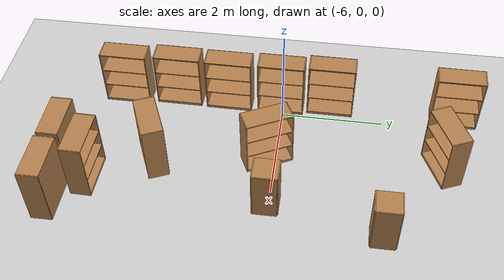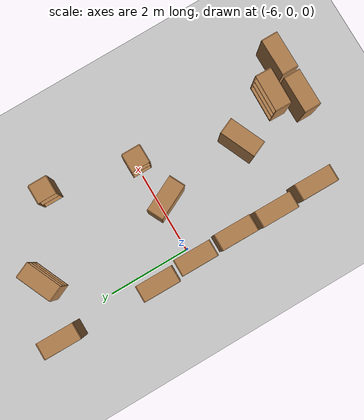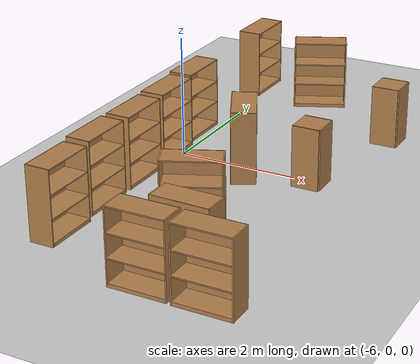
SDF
<sdf version="1.7">
 <world name="default">
  <model name="ground_plane">
   <static>1</static>
   <link name="link">
    <collision name="collision">
     <geometry><plane><normal>0 0 1</normal><size>100 100</size></plane></geometry>
     <surface><friction><ode><mu>100</mu><mu2>50</mu2></ode></friction></surface>
    </collision>
    <visual name="visual">
     <cast_shadows>0</cast_shadows>
     <geometry><plane><normal>0 0 1</normal><size>100 100</size></plane></geometry>
     <material>
      <script><uri>file://media/materials/scripts/gazebo.material</uri><name>Gazebo/Grey</name></script>
     </material>
    </visual>
   </link>
  </model>
  <model name="bookshelf_8">
   <static>1</static>
   <link name="link">
    <inertial><mass>1</mass></inertial>
    <collision name="back">
     <pose>0 0.005 0.6 0 -0 0</pose>
     <geometry><box><size>0.9 0.01 1.2</size></box></geometry>
    </collision>
    <visual name="visual1">
     <pose>0 0.005 0.6 0 -0 0</pose>
     <geometry><box><size>0.9 0.01 1.2</size></box></geometry>
     <material>
      <script><uri>file://media/materials/scripts/gazebo.material</uri><name>Gazebo/Wood</name></script>
     </material>
    </visual>
    <collision name="left_side">
     <pose>0.45 -0.195 0.6 0 -0 0</pose>
     <geometry><box><size>0.02 0.4 1.2</size></box></geometry>
    </collision>
    <visual name="visual2">
     <pose>0.45 -0.195 0.6 0 -0 0</pose>
     <geometry><box><size>0.02 0.4 1.2</size></box></geometry>
     <material>
      <script><uri>file://media/materials/scripts/gazebo.material</uri><name>Gazebo/Wood</name></script>
     </material>
    </visual>
    <collision name="right_side">
     <pose>-0.45 -0.195 0.6 0 -0 0</pose>
     <geometry><box><size>0.02 0.4 1.2</size></box></geometry>
    </collision>
    <visual name="visual3">
     <pose>-0.45 -0.195 0.6 0 -0 0</pose>
     <geometry><box><size>0.02 0.4 1.2</size></box></geometry>
     <material>
      <script><uri>file://media/materials/scripts/gazebo.material</uri><name>Gazebo/Wood</name></script>
     </material>
    </visual>
    <collision name="bottom">
     <pose>0 -0.195 0.03 0 -0 0</pose>
     <geometry><box><size>0.88 0.4 0.06</size></box></geometry>
    </collision>
    <visual name="visual4">
     <pose>0 -0.195 0.03 0 -0 0</pose>
     <geometry><box><size>0.88 0.4 0.06</size></box></geometry>
     <material>
      <script><uri>file://media/materials/scripts/gazebo.material</uri><name>Gazebo/Wood</name></script>
     </material>
    </visual>
    <collision name="top">
     <pose>0 -0.195 1.19 0 -0 0</pose>
     <geometry><box><size>0.88 0.4 0.02</size></box></geometry>
    </collision>
    <visual name="visual5">
     <pose>0 -0.195 1.19 0 -0 0</pose>
     <geometry><box><size>0.88 0.4 0.02</size></box></geometry>
     <material>
      <script><uri>file://media/materials/scripts/gazebo.material</uri><name>Gazebo/Wood</name></script>
     </material>
    </visual>
    <collision name="low_shelf">
     <pose>0 -0.195 0.43 0 -0 0</pose>
     <geometry><box><size>0.88 0.4 0.02</size></box></geometry>
    </collision>
    <visual name="visual6">
     <pose>0 -0.195 0.43 0 -0 0</pose>
     <geometry><box><size>0.88 0.4 0.02</size></box></geometry>
     <material>
      <script><uri>file://media/materials/scripts/gazebo.material</uri><name>Gazebo/Wood</name></script>
     </material>
    </visual>
    <collision name="high_shelf">
     <pose>0 -0.195 0.8 0 -0 0</pose>
     <geometry><box><size>0.88 0.4 0.02</size></box></geometry>
    </collision>
    <visual name="visual7">
     <pose>0 -0.195 0.8 0 -0 0</pose>
     <geometry><box><size>0.88 0.4 0.02</size></box></geometry>
     <material>
      <script><uri>file://media/materials/scripts/gazebo.material</uri><name>Gazebo/Wood</name></script>
     </material>
    </visual>
   </link>
   <pose>-4.29916 -3.79165 0 0 -0 0</pose>
  </model>
  <model name="bookshelf_9">
   <static>1</static>
   <link name="link">
    <inertial><mass>1</mass></inertial>
    <collision name="back">
     <pose>0 0.005 0.6 0 -0 0</pose>
     <geometry><box><size>0.9 0.01 1.2</size></box></geometry>
    </collision>
    <visual name="visual1">
     <pose>0 0.005 0.6 0 -0 0</pose>
     <geometry><box><size>0.9 0.01 1.2</size></box></geometry>
     <material>
      <script><uri>file://media/materials/scripts/gazebo.material</uri><name>Gazebo/Wood</name></script>
     </material>
    </visual>
    <collision name="left_side">
     <pose>0.45 -0.195 0.6 0 -0 0</pose>
     <geometry><box><size>0.02 0.4 1.2</size></box></geometry>
    </collision>
    <visual name="visual2">
     <pose>0.45 -0.195 0.6 0 -0 0</pose>
     <geometry><box><size>0.02 0.4 1.2</size></box></geometry>
     <material>
      <script><uri>file://media/materials/scripts/gazebo.material</uri><name>Gazebo/Wood</name></script>
     </material>
    </visual>
    <collision name="right_side">
     <pose>-0.45 -0.195 0.6 0 -0 0</pose>
     <geometry><box><size>0.02 0.4 1.2</size></box></geometry>
    </collision>
    <visual name="visual3">
     <pose>-0.45 -0.195 0.6 0 -0 0</pose>
     <geometry><box><size>0.02 0.4 1.2</size></box></geometry>
     <material>
      <script><uri>file://media/materials/scripts/gazebo.material</uri><name>Gazebo/Wood</name></script>
     </material>
    </visual>
    <collision name="bottom">
     <pose>0 -0.195 0.03 0 -0 0</pose>
     <geometry><box><size>0.88 0.4 0.06</size></box></geometry>
    </collision>
    <visual name="visual4">
     <pose>0 -0.195 0.03 0 -0 0</pose>
     <geometry><box><size>0.88 0.4 0.06</size></box></geometry>
     <material>
      <script><uri>file://media/materials/scripts/gazebo.material</uri><name>Gazebo/Wood</name></script>
     </material>
    </visual>
    <collision name="top">
     <pose>0 -0.195 1.19 0 -0 0</pose>
     <geometry><box><size>0.88 0.4 0.02</size></box></geometry>
    </collision>
    <visual name="visual5">
     <pose>0 -0.195 1.19 0 -0 0</pose>
     <geometry><box><size>0.88 0.4 0.02</size></box></geometry>
     <material>
      <script><uri>file://media/materials/scripts/gazebo.material</uri><name>Gazebo/Wood</name></script>
     </material>
    </visual>
    <collision name="low_shelf">
     <pose>0 -0.195 0.43 0 -0 0</pose>
     <geometry><box><size>0.88 0.4 0.02</size></box></geometry>
    </collision>
    <visual name="visual6">
     <pose>0 -0.195 0.43 0 -0 0</pose>
     <geometry><box><size>0.88 0.4 0.02</size></box></geometry>
     <material>
      <script><uri>file://media/materials/scripts/gazebo.material</uri><name>Gazebo/Wood</name></script>
     </material>
    </visual>
    <collision name="high_shelf">
     <pose>0 -0.195 0.8 0 -0 0</pose>
     <geometry><box><size>0.88 0.4 0.02</size></box></geometry>
    </collision>
    <visual name="visual7">
     <pose>0 -0.195 0.8 0 -0 0</pose>
     <geometry><box><size>0.88 0.4 0.02</size></box></geometry>
     <material>
      <script><uri>file://media/materials/scripts/gazebo.material</uri><name>Gazebo/Wood</name></script>
     </material>
    </visual>
   </link>
   <pose>-3.32142 -3.80273 0 0 -0 0</pose>
  </model>
  <model name="bookshelf_1_clone_clone_0">
   <static>1</static>
   <link name="link">
    <inertial><mass>1</mass></inertial>
    <collision name="back">
     <pose>0 0.005 0.6 0 -0 0</pose>
     <geometry><box><size>0.9 0.01 1.2</size></box></geometry>
    </collision>
    <visual name="visual1">
     <pose>0 0.005 0.6 0 -0 0</pose>
     <geometry><box><size>0.9 0.01 1.2</size></box></geometry>
     <material>
      <script><uri>file://media/materials/scripts/gazebo.material</uri><name>Gazebo/Wood</name></script>
     </material>
    </visual>
    <collision name="left_side">
     <pose>0.45 -0.195 0.6 0 -0 0</pose>
     <geometry><box><size>0.02 0.4 1.2</size></box></geometry>
    </collision>
    <visual name="visual2">
     <pose>0.45 -0.195 0.6 0 -0 0</pose>
     <geometry><box><size>0.02 0.4 1.2</size></box></geometry>
     <material>
      <script><uri>file://media/materials/scripts/gazebo.material</uri><name>Gazebo/Wood</name></script>
     </material>
    </visual>
    <collision name="right_side">
     <pose>-0.45 -0.195 0.6 0 -0 0</pose>
     <geometry><box><size>0.02 0.4 1.2</size></box></geometry>
    </collision>
    <visual name="visual3">
     <pose>-0.45 -0.195 0.6 0 -0 0</pose>
     <geometry><box><size>0.02 0.4 1.2</size></box></geometry>
     <material>
      <script><uri>file://media/materials/scripts/gazebo.material</uri><name>Gazebo/Wood</name></script>
     </material>
    </visual>
    <collision name="bottom">
     <pose>0 -0.195 0.03 0 -0 0</pose>
     <geometry><box><size>0.88 0.4 0.06</size></box></geometry>
    </collision>
    <visual name="visual4">
     <pose>0 -0.195 0.03 0 -0 0</pose>
     <geometry><box><size>0.88 0.4 0.06</size></box></geometry>
     <material>
      <script><uri>file://media/materials/scripts/gazebo.material</uri><name>Gazebo/Wood</name></script>
     </material>
    </visual>
    <collision name="top">
     <pose>0 -0.195 1.19 0 -0 0</pose>
     <geometry><box><size>0.88 0.4 0.02</size></box></geometry>
    </collision>
    <visual name="visual5">
     <pose>0 -0.195 1.19 0 -0 0</pose>
     <geometry><box><size>0.88 0.4 0.02</size></box></geometry>
     <material>
      <script><uri>file://media/materials/scripts/gazebo.material</uri><name>Gazebo/Wood</name></script>
     </material>
    </visual>
    <collision name="low_shelf">
     <pose>0 -0.195 0.43 0 -0 0</pose>
     <geometry><box><size>0.88 0.4 0.02</size></box></geometry>
    </collision>
    <visual name="visual6">
     <pose>0 -0.195 0.43 0 -0 0</pose>
     <geometry><box><size>0.88 0.4 0.02</size></box></geometry>
     <material>
      <script><uri>file://media/materials/scripts/gazebo.material</uri><name>Gazebo/Wood</name></script>
     </material>
    </visual>
    <collision name="high_shelf">
     <pose>0 -0.195 0.8 0 -0 0</pose>
     <geometry><box><size>0.88 0.4 0.02</size></box></geometry>
    </collision>
    <visual name="visual7">
     <pose>0 -0.195 0.8 0 -0 0</pose>
     <geometry><box><size>0.88 0.4 0.02</size></box></geometry>
     <material>
      <script><uri>file://media/materials/scripts/gazebo.material</uri><name>Gazebo/Wood</name></script>
     </material>
    </visual>
   </link>
   <pose>-3.95037 -3.64569 0 0 -0 3.12003</pose>
  </model>
  <model name="bookshelf_1_clone_2">
   <static>1</static>
   <link name="link">
    <inertial><mass>1</mass></inertial>
    <collision name="back">
     <pose>0 0.005 0.6 0 -0 0</pose>
     <geometry><box><size>0.9 0.01 1.2</size></box></geometry>
    </collision>
    <visual name="visual1">
     <pose>0 0.005 0.6 0 -0 0</pose>
     <geometry><box><size>0.9 0.01 1.2</size></box></geometry>
     <material>
      <script><uri>file://media/materials/scripts/gazebo.material</uri><name>Gazebo/Wood</name></script>
     </material>
    </visual>
    <collision name="left_side">
     <pose>0.45 -0.195 0.6 0 -0 0</pose>
     <geometry><box><size>0.02 0.4 1.2</size></box></geometry>
    </collision>
    <visual name="visual2">
     <pose>0.45 -0.195 0.6 0 -0 0</pose>
     <geometry><box><size>0.02 0.4 1.2</size></box></geometry>
     <material>
      <script><uri>file://media/materials/scripts/gazebo.material</uri><name>Gazebo/Wood</name></script>
     </material>
    </visual>
    <collision name="right_side">
     <pose>-0.45 -0.195 0.6 0 -0 0</pose>
     <geometry><box><size>0.02 0.4 1.2</size></box></geometry>
    </collision>
    <visual name="visual3">
     <pose>-0.45 -0.195 0.6 0 -0 0</pose>
     <geometry><box><size>0.02 0.4 1.2</size></box></geometry>
     <material>
      <script><uri>file://media/materials/scripts/gazebo.material</uri><name>Gazebo/Wood</name></script>
     </material>
    </visual>
    <collision name="bottom">
     <pose>0 -0.195 0.03 0 -0 0</pose>
     <geometry><box><size>0.88 0.4 0.06</size></box></geometry>
    </collision>
    <visual name="visual4">
     <pose>0 -0.195 0.03 0 -0 0</pose>
     <geometry><box><size>0.88 0.4 0.06</size></box></geometry>
     <material>
      <script><uri>file://media/materials/scripts/gazebo.material</uri><name>Gazebo/Wood</name></script>
     </material>
    </visual>
    <collision name="top">
     <pose>0 -0.195 1.19 0 -0 0</pose>
     <geometry><box><size>0.88 0.4 0.02</size></box></geometry>
    </collision>
    <visual name="visual5">
     <pose>0 -0.195 1.19 0 -0 0</pose>
     <geometry><box><size>0.88 0.4 0.02</size></box></geometry>
     <material>
      <script><uri>file://media/materials/scripts/gazebo.material</uri><name>Gazebo/Wood</name></script>
     </material>
    </visual>
    <collision name="low_shelf">
     <pose>0 -0.195 0.43 0 -0 0</pose>
     <geometry><box><size>0.88 0.4 0.02</size></box></geometry>
    </collision>
    <visual name="visual6">
     <pose>0 -0.195 0.43 0 -0 0</pose>
     <geometry><box><size>0.88 0.4 0.02</size></box></geometry>
     <material>
      <script><uri>file://media/materials/scripts/gazebo.material</uri><name>Gazebo/Wood</name></script>
     </material>
    </visual>
    <collision name="high_shelf">
     <pose>0 -0.195 0.8 0 -0 0</pose>
     <geometry><box><size>0.88 0.4 0.02</size></box></geometry>
    </collision>
    <visual name="visual7">
     <pose>0 -0.195 0.8 0 -0 0</pose>
     <geometry><box><size>0.88 0.4 0.02</size></box></geometry>
     <material>
      <script><uri>file://media/materials/scripts/gazebo.material</uri><name>Gazebo/Wood</name></script>
     </material>
    </visual>
   </link>
   <pose>-6.39308 -3.17837 0 0 -0 1.56314</pose>
  </model>
  <model name="bookshelf_1_clone_3">
   <static>1</static>
   <link name="link">
    <inertial><mass>1</mass></inertial>
    <collision name="back">
     <pose>0 0.005 0.6 0 -0 0</pose>
     <geometry><box><size>0.9 0.01 1.2</size></box></geometry>
    </collision>
    <visual name="visual1">
     <pose>0 0.005 0.6 0 -0 0</pose>
     <geometry><box><size>0.9 0.01 1.2</size></box></geometry>
     <material>
      <script><uri>file://media/materials/scripts/gazebo.material</uri><name>Gazebo/Wood</name></script>
     </material>
    </visual>
    <collision name="left_side">
     <pose>0.45 -0.195 0.6 0 -0 0</pose>
     <geometry><box><size>0.02 0.4 1.2</size></box></geometry>
    </collision>
    <visual name="visual2">
     <pose>0.45 -0.195 0.6 0 -0 0</pose>
     <geometry><box><size>0.02 0.4 1.2</size></box></geometry>
     <material>
      <script><uri>file://media/materials/scripts/gazebo.material</uri><name>Gazebo/Wood</name></script>
     </material>
    </visual>
    <collision name="right_side">
     <pose>-0.45 -0.195 0.6 0 -0 0</pose>
     <geometry><box><size>0.02 0.4 1.2</size></box></geometry>
    </collision>
    <visual name="visual3">
     <pose>-0.45 -0.195 0.6 0 -0 0</pose>
     <geometry><box><size>0.02 0.4 1.2</size></box></geometry>
     <material>
      <script><uri>file://media/materials/scripts/gazebo.material</uri><name>Gazebo/Wood</name></script>
     </material>
    </visual>
    <collision name="bottom">
     <pose>0 -0.195 0.03 0 -0 0</pose>
     <geometry><box><size>0.88 0.4 0.06</size></box></geometry>
    </collision>
    <visual name="visual4">
     <pose>0 -0.195 0.03 0 -0 0</pose>
     <geometry><box><size>0.88 0.4 0.06</size></box></geometry>
     <material>
      <script><uri>file://media/materials/scripts/gazebo.material</uri><name>Gazebo/Wood</name></script>
     </material>
    </visual>
    <collision name="top">
     <pose>0 -0.195 1.19 0 -0 0</pose>
     <geometry><box><size>0.88 0.4 0.02</size></box></geometry>
    </collision>
    <visual name="visual5">
     <pose>0 -0.195 1.19 0 -0 0</pose>
     <geometry><box><size>0.88 0.4 0.02</size></box></geometry>
     <material>
      <script><uri>file://media/materials/scripts/gazebo.material</uri><name>Gazebo/Wood</name></script>
     </material>
    </visual>
    <collision name="low_shelf">
     <pose>0 -0.195 0.43 0 -0 0</pose>
     <geometry><box><size>0.88 0.4 0.02</size></box></geometry>
    </collision>
    <visual name="visual6">
     <pose>0 -0.195 0.43 0 -0 0</pose>
     <geometry><box><size>0.88 0.4 0.02</size></box></geometry>
     <material>
      <script><uri>file://media/materials/scripts/gazebo.material</uri><name>Gazebo/Wood</name></script>
     </material>
    </visual>
    <collision name="high_shelf">
     <pose>0 -0.195 0.8 0 -0 0</pose>
     <geometry><box><size>0.88 0.4 0.02</size></box></geometry>
    </collision>
    <visual name="visual7">
     <pose>0 -0.195 0.8 0 -0 0</pose>
     <geometry><box><size>0.88 0.4 0.02</size></box></geometry>
     <material>
      <script><uri>file://media/materials/scripts/gazebo.material</uri><name>Gazebo/Wood</name></script>
     </material>
    </visual>
   </link>
   <pose>-6.45397 -2.12033 0 0 -0 1.56314</pose>
  </model>
  <model name="bookshelf_1_clone_4">
   <static>1</static>
   <link name="link">
    <inertial><mass>1</mass></inertial>
    <collision name="back">
     <pose>0 0.005 0.6 0 -0 0</pose>
     <geometry><box><size>0.9 0.01 1.2</size></box></geometry>
    </collision>
    <visual name="visual1">
     <pose>0 0.005 0.6 0 -0 0</pose>
     <geometry><box><size>0.9 0.01 1.2</size></box></geometry>
     <material>
      <script><uri>file://media/materials/scripts/gazebo.material</uri><name>Gazebo/Wood</name></script>
     </material>
    </visual>
    <collision name="left_side">
     <pose>0.45 -0.195 0.6 0 -0 0</pose>
     <geometry><box><size>0.02 0.4 1.2</size></box></geometry>
    </collision>
    <visual name="visual2">
     <pose>0.45 -0.195 0.6 0 -0 0</pose>
     <geometry><box><size>0.02 0.4 1.2</size></box></geometry>
     <material>
      <script><uri>file://media/materials/scripts/gazebo.material</uri><name>Gazebo/Wood</name></script>
     </material>
    </visual>
    <collision name="right_side">
     <pose>-0.45 -0.195 0.6 0 -0 0</pose>
     <geometry><box><size>0.02 0.4 1.2</size></box></geometry>
    </collision>
    <visual name="visual3">
     <pose>-0.45 -0.195 0.6 0 -0 0</pose>
     <geometry><box><size>0.02 0.4 1.2</size></box></geometry>
     <material>
      <script><uri>file://media/materials/scripts/gazebo.material</uri><name>Gazebo/Wood</name></script>
     </material>
    </visual>
    <collision name="bottom">
     <pose>0 -0.195 0.03 0 -0 0</pose>
     <geometry><box><size>0.88 0.4 0.06</size></box></geometry>
    </collision>
    <visual name="visual4">
     <pose>0 -0.195 0.03 0 -0 0</pose>
     <geometry><box><size>0.88 0.4 0.06</size></box></geometry>
     <material>
      <script><uri>file://media/materials/scripts/gazebo.material</uri><name>Gazebo/Wood</name></script>
     </material>
    </visual>
    <collision name="top">
     <pose>0 -0.195 1.19 0 -0 0</pose>
     <geometry><box><size>0.88 0.4 0.02</size></box></geometry>
    </collision>
    <visual name="visual5">
     <pose>0 -0.195 1.19 0 -0 0</pose>
     <geometry><box><size>0.88 0.4 0.02</size></box></geometry>
     <material>
      <script><uri>file://media/materials/scripts/gazebo.material</uri><name>Gazebo/Wood</name></script>
     </material>
    </visual>
    <collision name="low_shelf">
     <pose>0 -0.195 0.43 0 -0 0</pose>
     <geometry><box><size>0.88 0.4 0.02</size></box></geometry>
    </collision>
    <visual name="visual6">
     <pose>0 -0.195 0.43 0 -0 0</pose>
     <geometry><box><size>0.88 0.4 0.02</size></box></geometry>
     <material>
      <script><uri>file://media/materials/scripts/gazebo.material</uri><name>Gazebo/Wood</name></script>
     </material>
    </visual>
    <collision name="high_shelf">
     <pose>0 -0.195 0.8 0 -0 0</pose>
     <geometry><box><size>0.88 0.4 0.02</size></box></geometry>
    </collision>
    <visual name="visual7">
     <pose>0 -0.195 0.8 0 -0 0</pose>
     <geometry><box><size>0.88 0.4 0.02</size></box></geometry>
     <material>
      <script><uri>file://media/materials/scripts/gazebo.material</uri><name>Gazebo/Wood</name></script>
     </material>
    </visual>
   </link>
   <pose>-6.43391 -1.09772 0 0 -0 1.56314</pose>
  </model>
  <model name="bookshelf_1_clone_5">
   <static>1</static>
   <link name="link">
    <inertial><mass>1</mass></inertial>
    <collision name="back">
     <pose>0 0.005 0.6 0 -0 0</pose>
     <geometry><box><size>0.9 0.01 1.2</size></box></geometry>
    </collision>
    <visual name="visual1">
     <pose>0 0.005 0.6 0 -0 0</pose>
     <geometry><box><size>0.9 0.01 1.2</size></box></geometry>
     <material>
      <script><uri>file://media/materials/scripts/gazebo.material</uri><name>Gazebo/Wood</name></script>
     </material>
    </visual>
    <collision name="left_side">
     <pose>0.45 -0.195 0.6 0 -0 0</pose>
     <geometry><box><size>0.02 0.4 1.2</size></box></geometry>
    </collision>
    <visual name="visual2">
     <pose>0.45 -0.195 0.6 0 -0 0</pose>
     <geometry><box><size>0.02 0.4 1.2</size></box></geometry>
     <material>
      <script><uri>file://media/materials/scripts/gazebo.material</uri><name>Gazebo/Wood</name></script>
     </material>
    </visual>
    <collision name="right_side">
     <pose>-0.45 -0.195 0.6 0 -0 0</pose>
     <geometry><box><size>0.02 0.4 1.2</size></box></geometry>
    </collision>
    <visual name="visual3">
     <pose>-0.45 -0.195 0.6 0 -0 0</pose>
     <geometry><box><size>0.02 0.4 1.2</size></box></geometry>
     <material>
      <script><uri>file://media/materials/scripts/gazebo.material</uri><name>Gazebo/Wood</name></script>
     </material>
    </visual>
    <collision name="bottom">
     <pose>0 -0.195 0.03 0 -0 0</pose>
     <geometry><box><size>0.88 0.4 0.06</size></box></geometry>
    </collision>
    <visual name="visual4">
     <pose>0 -0.195 0.03 0 -0 0</pose>
     <geometry><box><size>0.88 0.4 0.06</size></box></geometry>
     <material>
      <script><uri>file://media/materials/scripts/gazebo.material</uri><name>Gazebo/Wood</name></script>
     </material>
    </visual>
    <collision name="top">
     <pose>0 -0.195 1.19 0 -0 0</pose>
     <geometry><box><size>0.88 0.4 0.02</size></box></geometry>
    </collision>
    <visual name="visual5">
     <pose>0 -0.195 1.19 0 -0 0</pose>
     <geometry><box><size>0.88 0.4 0.02</size></box></geometry>
     <material>
      <script><uri>file://media/materials/scripts/gazebo.material</uri><name>Gazebo/Wood</name></script>
     </material>
    </visual>
    <collision name="low_shelf">
     <pose>0 -0.195 0.43 0 -0 0</pose>
     <geometry><box><size>0.88 0.4 0.02</size></box></geometry>
    </collision>
    <visual name="visual6">
     <pose>0 -0.195 0.43 0 -0 0</pose>
     <geometry><box><size>0.88 0.4 0.02</size></box></geometry>
     <material>
      <script><uri>file://media/materials/scripts/gazebo.material</uri><name>Gazebo/Wood</name></script>
     </material>
    </visual>
    <collision name="high_shelf">
     <pose>0 -0.195 0.8 0 -0 0</pose>
     <geometry><box><size>0.88 0.4 0.02</size></box></geometry>
    </collision>
    <visual name="visual7">
     <pose>0 -0.195 0.8 0 -0 0</pose>
     <geometry><box><size>0.88 0.4 0.02</size></box></geometry>
     <material>
      <script><uri>file://media/materials/scripts/gazebo.material</uri><name>Gazebo/Wood</name></script>
     </material>
    </visual>
   </link>
   <pose>-6.45868 -0.057602 0 0 -0 1.56314</pose>
  </model>
  <model name="bookshelf_1_clone_6">
   <static>1</static>
   <link name="link">
    <inertial><mass>1</mass></inertial>
    <collision name="back">
     <pose>0 0.005 0.6 0 -0 0</pose>
     <geometry><box><size>0.9 0.01 1.2</size></box></geometry>
    </collision>
    <visual name="visual1">
     <pose>0 0.005 0.6 0 -0 0</pose>
     <geometry><box><size>0.9 0.01 1.2</size></box></geometry>
     <material>
      <script><uri>file://media/materials/scripts/gazebo.material</uri><name>Gazebo/Wood</name></script>
     </material>
    </visual>
    <collision name="left_side">
     <pose>0.45 -0.195 0.6 0 -0 0</pose>
     <geometry><box><size>0.02 0.4 1.2</size></box></geometry>
    </collision>
    <visual name="visual2">
     <pose>0.45 -0.195 0.6 0 -0 0</pose>
     <geometry><box><size>0.02 0.4 1.2</size></box></geometry>
     <material>
      <script><uri>file://media/materials/scripts/gazebo.material</uri><name>Gazebo/Wood</name></script>
     </material>
    </visual>
    <collision name="right_side">
     <pose>-0.45 -0.195 0.6 0 -0 0</pose>
     <geometry><box><size>0.02 0.4 1.2</size></box></geometry>
    </collision>
    <visual name="visual3">
     <pose>-0.45 -0.195 0.6 0 -0 0</pose>
     <geometry><box><size>0.02 0.4 1.2</size></box></geometry>
     <material>
      <script><uri>file://media/materials/scripts/gazebo.material</uri><name>Gazebo/Wood</name></script>
     </material>
    </visual>
    <collision name="bottom">
     <pose>0 -0.195 0.03 0 -0 0</pose>
     <geometry><box><size>0.88 0.4 0.06</size></box></geometry>
    </collision>
    <visual name="visual4">
     <pose>0 -0.195 0.03 0 -0 0</pose>
     <geometry><box><size>0.88 0.4 0.06</size></box></geometry>
     <material>
      <script><uri>file://media/materials/scripts/gazebo.material</uri><name>Gazebo/Wood</name></script>
     </material>
    </visual>
    <collision name="top">
     <pose>0 -0.195 1.19 0 -0 0</pose>
     <geometry><box><size>0.88 0.4 0.02</size></box></geometry>
    </collision>
    <visual name="visual5">
     <pose>0 -0.195 1.19 0 -0 0</pose>
     <geometry><box><size>0.88 0.4 0.02</size></box></geometry>
     <material>
      <script><uri>file://media/materials/scripts/gazebo.material</uri><name>Gazebo/Wood</name></script>
     </material>
    </visual>
    <collision name="low_shelf">
     <pose>0 -0.195 0.43 0 -0 0</pose>
     <geometry><box><size>0.88 0.4 0.02</size></box></geometry>
    </collision>
    <visual name="visual6">
     <pose>0 -0.195 0.43 0 -0 0</pose>
     <geometry><box><size>0.88 0.4 0.02</size></box></geometry>
     <material>
      <script><uri>file://media/materials/scripts/gazebo.material</uri><name>Gazebo/Wood</name></script>
     </material>
    </visual>
    <collision name="high_shelf">
     <pose>0 -0.195 0.8 0 -0 0</pose>
     <geometry><box><size>0.88 0.4 0.02</size></box></geometry>
    </collision>
    <visual name="visual7">
     <pose>0 -0.195 0.8 0 -0 0</pose>
     <geometry><box><size>0.88 0.4 0.02</size></box></geometry>
     <material>
      <script><uri>file://media/materials/scripts/gazebo.material</uri><name>Gazebo/Wood</name></script>
     </material>
    </visual>
   </link>
   <pose>-6.51912 0.937295 0 0 -0 1.56314</pose>
  </model>
  <model name="bookshelf_1_clone_8">
   <static>1</static>
   <link name="link">
    <inertial><mass>1</mass></inertial>
    <collision name="back">
     <pose>0 0.005 0.6 0 -0 0</pose>
     <geometry><box><size>0.9 0.01 1.2</size></box></geometry>
    </collision>
    <visual name="visual1">
     <pose>0 0.005 0.6 0 -0 0</pose>
     <geometry><box><size>0.9 0.01 1.2</size></box></geometry>
     <material>
      <script><uri>file://media/materials/scripts/gazebo.material</uri><name>Gazebo/Wood</name></script>
     </material>
    </visual>
    <collision name="left_side">
     <pose>0.45 -0.195 0.6 0 -0 0</pose>
     <geometry><box><size>0.02 0.4 1.2</size></box></geometry>
    </collision>
    <visual name="visual2">
     <pose>0.45 -0.195 0.6 0 -0 0</pose>
     <geometry><box><size>0.02 0.4 1.2</size></box></geometry>
     <material>
      <script><uri>file://media/materials/scripts/gazebo.material</uri><name>Gazebo/Wood</name></script>
     </material>
    </visual>
    <collision name="right_side">
     <pose>-0.45 -0.195 0.6 0 -0 0</pose>
     <geometry><box><size>0.02 0.4 1.2</size></box></geometry>
    </collision>
    <visual name="visual3">
     <pose>-0.45 -0.195 0.6 0 -0 0</pose>
     <geometry><box><size>0.02 0.4 1.2</size></box></geometry>
     <material>
      <script><uri>file://media/materials/scripts/gazebo.material</uri><name>Gazebo/Wood</name></script>
     </material>
    </visual>
    <collision name="bottom">
     <pose>0 -0.195 0.03 0 -0 0</pose>
     <geometry><box><size>0.88 0.4 0.06</size></box></geometry>
    </collision>
    <visual name="visual4">
     <pose>0 -0.195 0.03 0 -0 0</pose>
     <geometry><box><size>0.88 0.4 0.06</size></box></geometry>
     <material>
      <script><uri>file://media/materials/scripts/gazebo.material</uri><name>Gazebo/Wood</name></script>
     </material>
    </visual>
    <collision name="top">
     <pose>0 -0.195 1.19 0 -0 0</pose>
     <geometry><box><size>0.88 0.4 0.02</size></box></geometry>
    </collision>
    <visual name="visual5">
     <pose>0 -0.195 1.19 0 -0 0</pose>
     <geometry><box><size>0.88 0.4 0.02</size></box></geometry>
     <material>
      <script><uri>file://media/materials/scripts/gazebo.material</uri><name>Gazebo/Wood</name></script>
     </material>
    </visual>
    <collision name="low_shelf">
     <pose>0 -0.195 0.43 0 -0 0</pose>
     <geometry><box><size>0.88 0.4 0.02</size></box></geometry>
    </collision>
    <visual name="visual6">
     <pose>0 -0.195 0.43 0 -0 0</pose>
     <geometry><box><size>0.88 0.4 0.02</size></box></geometry>
     <material>
      <script><uri>file://media/materials/scripts/gazebo.material</uri><name>Gazebo/Wood</name></script>
     </material>
    </visual>
    <collision name="high_shelf">
     <pose>0 -0.195 0.8 0 -0 0</pose>
     <geometry><box><size>0.88 0.4 0.02</size></box></geometry>
    </collision>
    <visual name="visual7">
     <pose>0 -0.195 0.8 0 -0 0</pose>
     <geometry><box><size>0.88 0.4 0.02</size></box></geometry>
     <material>
      <script><uri>file://media/materials/scripts/gazebo.material</uri><name>Gazebo/Wood</name></script>
     </material>
    </visual>
   </link>
   <pose>-6.48183 3.40297 0 0 -0 1.56314</pose>
  </model>
  <model name="bookshelf_1_clone_9">
   <static>1</static>
   <link name="link">
    <inertial><mass>1</mass></inertial>
    <collision name="back">
     <pose>0 0.005 0.6 0 -0 0</pose>
     <geometry><box><size>0.9 0.01 1.2</size></box></geometry>
    </collision>
    <visual name="visual1">
     <pose>0 0.005 0.6 0 -0 0</pose>
     <geometry><box><size>0.9 0.01 1.2</size></box></geometry>
     <material>
      <script><uri>file://media/materials/scripts/gazebo.material</uri><name>Gazebo/Wood</name></script>
     </material>
    </visual>
    <collision name="left_side">
     <pose>0.45 -0.195 0.6 0 -0 0</pose>
     <geometry><box><size>0.02 0.4 1.2</size></box></geometry>
    </collision>
    <visual name="visual2">
     <pose>0.45 -0.195 0.6 0 -0 0</pose>
     <geometry><box><size>0.02 0.4 1.2</size></box></geometry>
     <material>
      <script><uri>file://media/materials/scripts/gazebo.material</uri><name>Gazebo/Wood</name></script>
     </material>
    </visual>
    <collision name="right_side">
     <pose>-0.45 -0.195 0.6 0 -0 0</pose>
     <geometry><box><size>0.02 0.4 1.2</size></box></geometry>
    </collision>
    <visual name="visual3">
     <pose>-0.45 -0.195 0.6 0 -0 0</pose>
     <geometry><box><size>0.02 0.4 1.2</size></box></geometry>
     <material>
      <script><uri>file://media/materials/scripts/gazebo.material</uri><name>Gazebo/Wood</name></script>
     </material>
    </visual>
    <collision name="bottom">
     <pose>0 -0.195 0.03 0 -0 0</pose>
     <geometry><box><size>0.88 0.4 0.06</size></box></geometry>
    </collision>
    <visual name="visual4">
     <pose>0 -0.195 0.03 0 -0 0</pose>
     <geometry><box><size>0.88 0.4 0.06</size></box></geometry>
     <material>
      <script><uri>file://media/materials/scripts/gazebo.material</uri><name>Gazebo/Wood</name></script>
     </material>
    </visual>
    <collision name="top">
     <pose>0 -0.195 1.19 0 -0 0</pose>
     <geometry><box><size>0.88 0.4 0.02</size></box></geometry>
    </collision>
    <visual name="visual5">
     <pose>0 -0.195 1.19 0 -0 0</pose>
     <geometry><box><size>0.88 0.4 0.02</size></box></geometry>
     <material>
      <script><uri>file://media/materials/scripts/gazebo.material</uri><name>Gazebo/Wood</name></script>
     </material>
    </visual>
    <collision name="low_shelf">
     <pose>0 -0.195 0.43 0 -0 0</pose>
     <geometry><box><size>0.88 0.4 0.02</size></box></geometry>
    </collision>
    <visual name="visual6">
     <pose>0 -0.195 0.43 0 -0 0</pose>
     <geometry><box><size>0.88 0.4 0.02</size></box></geometry>
     <material>
      <script><uri>file://media/materials/scripts/gazebo.material</uri><name>Gazebo/Wood</name></script>
     </material>
    </visual>
    <collision name="high_shelf">
     <pose>0 -0.195 0.8 0 -0 0</pose>
     <geometry><box><size>0.88 0.4 0.02</size></box></geometry>
    </collision>
    <visual name="visual7">
     <pose>0 -0.195 0.8 0 -0 0</pose>
     <geometry><box><size>0.88 0.4 0.02</size></box></geometry>
     <material>
      <script><uri>file://media/materials/scripts/gazebo.material</uri><name>Gazebo/Wood</name></script>
     </material>
    </visual>
   </link>
   <pose>-5.03791 3.32351 0 0.002997 -0.001316 0.415193</pose>
  </model>
  <model name="bookshelf_1_clone_9_clone_0">
   <static>1</static>
   <link name="link">
    <inertial><mass>1</mass></inertial>
    <collision name="back">
     <pose>0 0.005 0.6 0 -0 0</pose>
     <geometry><box><size>0.9 0.01 1.2</size></box></geometry>
    </collision>
    <visual name="visual1">
     <pose>0 0.005 0.6 0 -0 0</pose>
     <geometry><box><size>0.9 0.01 1.2</size></box></geometry>
     <material>
      <script><uri>file://media/materials/scripts/gazebo.material</uri><name>Gazebo/Wood</name></script>
     </material>
    </visual>
    <collision name="left_side">
     <pose>0.45 -0.195 0.6 0 -0 0</pose>
     <geometry><box><size>0.02 0.4 1.2</size></box></geometry>
    </collision>
    <visual name="visual2">
     <pose>0.45 -0.195 0.6 0 -0 0</pose>
     <geometry><box><size>0.02 0.4 1.2</size></box></geometry>
     <material>
      <script><uri>file://media/materials/scripts/gazebo.material</uri><name>Gazebo/Wood</name></script>
     </material>
    </visual>
    <collision name="right_side">
     <pose>-0.45 -0.195 0.6 0 -0 0</pose>
     <geometry><box><size>0.02 0.4 1.2</size></box></geometry>
    </collision>
    <visual name="visual3">
     <pose>-0.45 -0.195 0.6 0 -0 0</pose>
     <geometry><box><size>0.02 0.4 1.2</size></box></geometry>
     <material>
      <script><uri>file://media/materials/scripts/gazebo.material</uri><name>Gazebo/Wood</name></script>
     </material>
    </visual>
    <collision name="bottom">
     <pose>0 -0.195 0.03 0 -0 0</pose>
     <geometry><box><size>0.88 0.4 0.06</size></box></geometry>
    </collision>
    <visual name="visual4">
     <pose>0 -0.195 0.03 0 -0 0</pose>
     <geometry><box><size>0.88 0.4 0.06</size></box></geometry>
     <material>
      <script><uri>file://media/materials/scripts/gazebo.material</uri><name>Gazebo/Wood</name></script>
     </material>
    </visual>
    <collision name="top">
     <pose>0 -0.195 1.19 0 -0 0</pose>
     <geometry><box><size>0.88 0.4 0.02</size></box></geometry>
    </collision>
    <visual name="visual5">
     <pose>0 -0.195 1.19 0 -0 0</pose>
     <geometry><box><size>0.88 0.4 0.02</size></box></geometry>
     <material>
      <script><uri>file://media/materials/scripts/gazebo.material</uri><name>Gazebo/Wood</name></script>
     </material>
    </visual>
    <collision name="low_shelf">
     <pose>0 -0.195 0.43 0 -0 0</pose>
     <geometry><box><size>0.88 0.4 0.02</size></box></geometry>
    </collision>
    <visual name="visual6">
     <pose>0 -0.195 0.43 0 -0 0</pose>
     <geometry><box><size>0.88 0.4 0.02</size></box></geometry>
     <material>
      <script><uri>file://media/materials/scripts/gazebo.material</uri><name>Gazebo/Wood</name></script>
     </material>
    </visual>
    <collision name="high_shelf">
     <pose>0 -0.195 0.8 0 -0 0</pose>
     <geometry><box><size>0.88 0.4 0.02</size></box></geometry>
    </collision>
    <visual name="visual7">
     <pose>0 -0.195 0.8 0 -0 0</pose>
     <geometry><box><size>0.88 0.4 0.02</size></box></geometry>
     <material>
      <script><uri>file://media/materials/scripts/gazebo.material</uri><name>Gazebo/Wood</name></script>
     </material>
    </visual>
   </link>
   <pose>-4.59395 -2.12625 0 0.002997 -0.001316 0.415193</pose>
  </model>
  <model name="bookshelf_1_clone_9_clone_1">
   <static>1</static>
   <link name="link">
    <inertial><mass>1</mass></inertial>
    <collision name="back">
     <pose>0 0.005 0.6 0 -0 0</pose>
     <geometry><box><size>0.9 0.01 1.2</size></box></geometry>
    </collision>
    <visual name="visual1">
     <pose>0 0.005 0.6 0 -0 0</pose>
     <geometry><box><size>0.9 0.01 1.2</size></box></geometry>
     <material>
      <script><uri>file://media/materials/scripts/gazebo.material</uri><name>Gazebo/Wood</name></script>
     </material>
    </visual>
    <collision name="left_side">
     <pose>0.45 -0.195 0.6 0 -0 0</pose>
     <geometry><box><size>0.02 0.4 1.2</size></box></geometry>
    </collision>
    <visual name="visual2">
     <pose>0.45 -0.195 0.6 0 -0 0</pose>
     <geometry><box><size>0.02 0.4 1.2</size></box></geometry>
     <material>
      <script><uri>file://media/materials/scripts/gazebo.material</uri><name>Gazebo/Wood</name></script>
     </material>
    </visual>
    <collision name="right_side">
     <pose>-0.45 -0.195 0.6 0 -0 0</pose>
     <geometry><box><size>0.02 0.4 1.2</size></box></geometry>
    </collision>
    <visual name="visual3">
     <pose>-0.45 -0.195 0.6 0 -0 0</pose>
     <geometry><box><size>0.02 0.4 1.2</size></box></geometry>
     <material>
      <script><uri>file://media/materials/scripts/gazebo.material</uri><name>Gazebo/Wood</name></script>
     </material>
    </visual>
    <collision name="bottom">
     <pose>0 -0.195 0.03 0 -0 0</pose>
     <geometry><box><size>0.88 0.4 0.06</size></box></geometry>
    </collision>
    <visual name="visual4">
     <pose>0 -0.195 0.03 0 -0 0</pose>
     <geometry><box><size>0.88 0.4 0.06</size></box></geometry>
     <material>
      <script><uri>file://media/materials/scripts/gazebo.material</uri><name>Gazebo/Wood</name></script>
     </material>
    </visual>
    <collision name="top">
     <pose>0 -0.195 1.19 0 -0 0</pose>
     <geometry><box><size>0.88 0.4 0.02</size></box></geometry>
    </collision>
    <visual name="visual5">
     <pose>0 -0.195 1.19 0 -0 0</pose>
     <geometry><box><size>0.88 0.4 0.02</size></box></geometry>
     <material>
      <script><uri>file://media/materials/scripts/gazebo.material</uri><name>Gazebo/Wood</name></script>
     </material>
    </visual>
    <collision name="low_shelf">
     <pose>0 -0.195 0.43 0 -0 0</pose>
     <geometry><box><size>0.88 0.4 0.02</size></box></geometry>
    </collision>
    <visual name="visual6">
     <pose>0 -0.195 0.43 0 -0 0</pose>
     <geometry><box><size>0.88 0.4 0.02</size></box></geometry>
     <material>
      <script><uri>file://media/materials/scripts/gazebo.material</uri><name>Gazebo/Wood</name></script>
     </material>
    </visual>
    <collision name="high_shelf">
     <pose>0 -0.195 0.8 0 -0 0</pose>
     <geometry><box><size>0.88 0.4 0.02</size></box></geometry>
    </collision>
    <visual name="visual7">
     <pose>0 -0.195 0.8 0 -0 0</pose>
     <geometry><box><size>0.88 0.4 0.02</size></box></geometry>
     <material>
      <script><uri>file://media/materials/scripts/gazebo.material</uri><name>Gazebo/Wood</name></script>
     </material>
    </visual>
   </link>
   <pose>-4.97279 -0.253056 0 -0.001444 -0.002937 2.02914</pose>
  </model>
  <model name="cabinet_clone_0">
   <static>1</static>
   <link name="cabinet_bottom_plate">
    <inertial>
     <pose>0 0 -1 0 -0 0</pose>
     <inertia><ixx>2.05</ixx><ixy>0</ixy><ixz>0</ixz><iyy>2.05</iyy><iyz>0</iyz><izz>2.05</izz></inertia>
     <mass>25</mass>
    </inertial>
    <collision name="cabinet_bottom_plate_geom">
     <pose>0 0 0.01 0 -0 0</pose>
     <geometry><box><size>0.45 0.45 0.02</size></box></geometry>
    </collision>
    <visual name="cabinet_bottom_plate_geom_visual">
     <pose>0 0 0.01 0 -0 0</pose>
     <geometry><box><size>0.45 0.45 0.02</size></box></geometry>
     <material>
      <script><uri>file://media/materials/scripts/gazebo.material</uri><name>Gazebo/Wood</name></script>
     </material>
    </visual>
    <collision name="cabinet_bottom_plate_geom_cabinet_back_plate">
     <pose>0.235 0 0.51 0 -0 0</pose>
     <geometry><box><size>0.02 0.45 1.02</size></box></geometry>
    </collision>
    <visual name="cabinet_bottom_plate_geom_cabinet_back_plate_visual">
     <pose>0.235 0 0.51 0 -0 0</pose>
     <geometry><box><size>0.02 0.45 1.02</size></box></geometry>
     <material>
      <script><uri>file://media/materials/scripts/gazebo.material</uri><name>Gazebo/Wood</name></script>
     </material>
    </visual>
    <collision name="cabinet_bottom_plate_geom_cabinet_left_plate">
     <pose>0 0.235 0.51 0 -0 0</pose>
     <geometry><box><size>0.45 0.02 1.02</size></box></geometry>
    </collision>
    <visual name="cabinet_bottom_plate_geom_cabinet_left_plate_visual">
     <pose>0 0.235 0.51 0 -0 0</pose>
     <geometry><box><size>0.45 0.02 1.02</size></box></geometry>
     <material>
      <script><uri>file://media/materials/scripts/gazebo.material</uri><name>Gazebo/Wood</name></script>
     </material>
    </visual>
    <collision name="cabinet_bottom_plate_geom_cabinet_middle_plate">
     <pose>0 0 0.51 0 -0 0</pose>
     <geometry><box><size>0.45 0.45 0.02</size></box></geometry>
    </collision>
    <visual name="cabinet_bottom_plate_geom_cabinet_middle_plate_visual">
     <pose>0 0 0.51 0 -0 0</pose>
     <geometry><box><size>0.45 0.45 0.02</size></box></geometry>
     <material>
      <script><uri>file://media/materials/scripts/gazebo.material</uri><name>Gazebo/Wood</name></script>
     </material>
    </visual>
    <collision name="cabinet_bottom_plate_geom_cabinet_right_plate">
     <pose>0 -0.235 0.51 0 -0 0</pose>
     <geometry><box><size>0.45 0.02 1.02</size></box></geometry>
    </collision>
    <visual name="cabinet_bottom_plate_geom_cabinet_right_plate_visual">
     <pose>0 -0.235 0.51 0 -0 0</pose>
     <geometry><box><size>0.45 0.02 1.02</size></box></geometry>
     <material>
      <script><uri>file://media/materials/scripts/gazebo.material</uri><name>Gazebo/Wood</name></script>
     </material>
    </visual>
    <collision name="cabinet_bottom_plate_geom_cabinet_top_plate">
     <pose>0 0 1.01 0 -0 0</pose>
     <geometry><box><size>0.45 0.45 0.02</size></box></geometry>
    </collision>
    <visual name="cabinet_bottom_plate_geom_cabinet_top_plate_visual">
     <pose>0 0 1.01 0 -0 0</pose>
     <geometry><box><size>0.45 0.45 0.02</size></box></geometry>
     <material>
      <script><uri>file://media/materials/scripts/gazebo.material</uri><name>Gazebo/Wood</name></script>
     </material>
    </visual>
   </link>
   <pose>-3.69305 -0.043433 0 0 -0 0</pose>
  </model>
  <model name="cabinet_clone_1">
   <static>1</static>
   <link name="cabinet_bottom_plate">
    <inertial>
     <pose>0 0 -1 0 -0 0</pose>
     <inertia><ixx>2.05</ixx><ixy>0</ixy><ixz>0</ixz><iyy>2.05</iyy><iyz>0</iyz><izz>2.05</izz></inertia>
     <mass>25</mass>
    </inertial>
    <collision name="cabinet_bottom_plate_geom">
     <pose>0 0 0.01 0 -0 0</pose>
     <geometry><box><size>0.45 0.45 0.02</size></box></geometry>
    </collision>
    <visual name="cabinet_bottom_plate_geom_visual">
     <pose>0 0 0.01 0 -0 0</pose>
     <geometry><box><size>0.45 0.45 0.02</size></box></geometry>
     <material>
      <script><uri>file://media/materials/scripts/gazebo.material</uri><name>Gazebo/Wood</name></script>
     </material>
    </visual>
    <collision name="cabinet_bottom_plate_geom_cabinet_back_plate">
     <pose>0.235 0 0.51 0 -0 0</pose>
     <geometry><box><size>0.02 0.45 1.02</size></box></geometry>
    </collision>
    <visual name="cabinet_bottom_plate_geom_cabinet_back_plate_visual">
     <pose>0.235 0 0.51 0 -0 0</pose>
     <geometry><box><size>0.02 0.45 1.02</size></box></geometry>
     <material>
      <script><uri>file://media/materials/scripts/gazebo.material</uri><name>Gazebo/Wood</name></script>
     </material>
    </visual>
    <collision name="cabinet_bottom_plate_geom_cabinet_left_plate">
     <pose>0 0.235 0.51 0 -0 0</pose>
     <geometry><box><size>0.45 0.02 1.02</size></box></geometry>
    </collision>
    <visual name="cabinet_bottom_plate_geom_cabinet_left_plate_visual">
     <pose>0 0.235 0.51 0 -0 0</pose>
     <geometry><box><size>0.45 0.02 1.02</size></box></geometry>
     <material>
      <script><uri>file://media/materials/scripts/gazebo.material</uri><name>Gazebo/Wood</name></script>
     </material>
    </visual>
    <collision name="cabinet_bottom_plate_geom_cabinet_middle_plate">
     <pose>0 0 0.51 0 -0 0</pose>
     <geometry><box><size>0.45 0.45 0.02</size></box></geometry>
    </collision>
    <visual name="cabinet_bottom_plate_geom_cabinet_middle_plate_visual">
     <pose>0 0 0.51 0 -0 0</pose>
     <geometry><box><size>0.45 0.45 0.02</size></box></geometry>
     <material>
      <script><uri>file://media/materials/scripts/gazebo.material</uri><name>Gazebo/Wood</name></script>
     </material>
    </visual>
    <collision name="cabinet_bottom_plate_geom_cabinet_right_plate">
     <pose>0 -0.235 0.51 0 -0 0</pose>
     <geometry><box><size>0.45 0.02 1.02</size></box></geometry>
    </collision>
    <visual name="cabinet_bottom_plate_geom_cabinet_right_plate_visual">
     <pose>0 -0.235 0.51 0 -0 0</pose>
     <geometry><box><size>0.45 0.02 1.02</size></box></geometry>
     <material>
      <script><uri>file://media/materials/scripts/gazebo.material</uri><name>Gazebo/Wood</name></script>
     </material>
    </visual>
    <collision name="cabinet_bottom_plate_geom_cabinet_top_plate">
     <pose>0 0 1.01 0 -0 0</pose>
     <geometry><box><size>0.45 0.45 0.02</size></box></geometry>
    </collision>
    <visual name="cabinet_bottom_plate_geom_cabinet_top_plate_visual">
     <pose>0 0 1.01 0 -0 0</pose>
     <geometry><box><size>0.45 0.45 0.02</size></box></geometry>
     <material>
      <script><uri>file://media/materials/scripts/gazebo.material</uri><name>Gazebo/Wood</name></script>
     </material>
    </visual>
   </link>
   <pose>-3.23199 2.09129 0 0 -0 0</pose>
  </model>
 </world>
</sdf>
